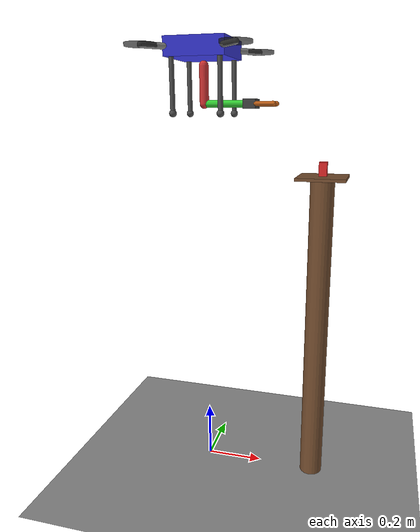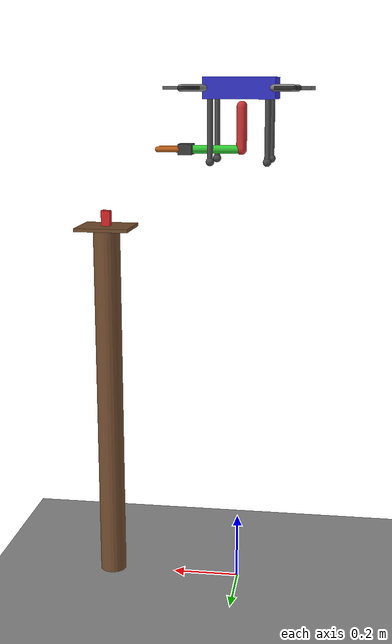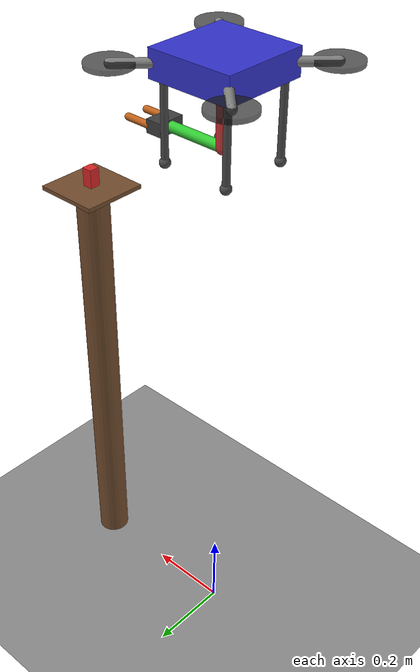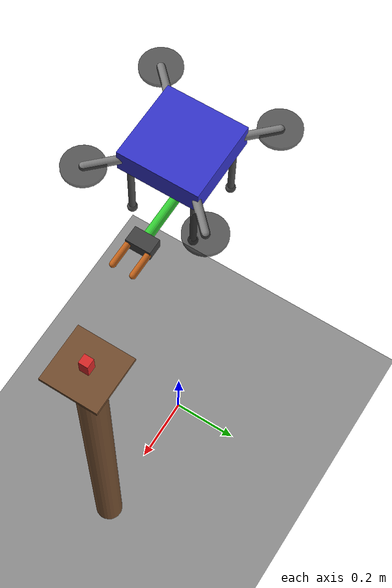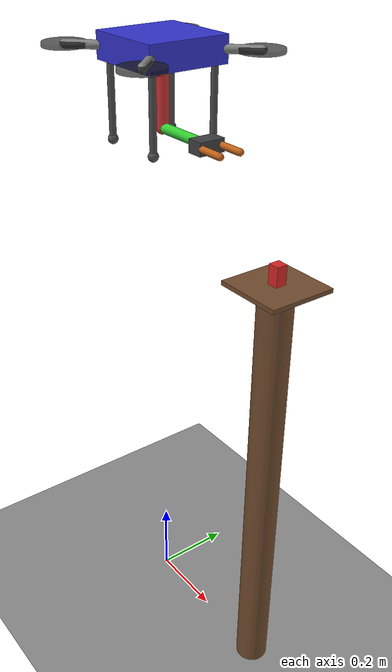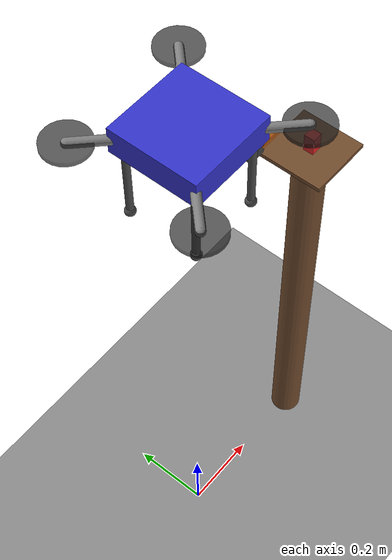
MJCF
<mujoco model="grasp_scene">

    <compiler angle="radian" coordinate="local"/>
    <option gravity="0 0 -9.81" timestep="0.002"/>

    <visual>
        <headlight ambient="0.2 0.2 0.2" diffuse="0.4 0.4 0.4" specular="0.0 0.0 0.0"/>
        <quality shadowsize="8192"/>
        <map znear="0.005" zfar="100"/>
        <rgba haze="0.15 0.25 0.35 1"/>
    </visual>

    <asset>
        <texture name="grid" type="2d" builtin="checker" width="1024" height="1024"
                 rgb1="0.45 0.45 0.45" rgb2="0.65 0.65 0.65"/>
        <material name="grid_mat" texture="grid" texrepeat="5 5" texuniform="true"
                  reflectance="0.05"/>
        <texture name="sky" type="skybox" builtin="gradient"
                 rgb1="0.75 0.88 1.0" rgb2="0.08 0.18 0.45" width="512" height="512"/>

        <!-- Box material: bright red so it is easy to spot -->
        <material name="box_mat" rgba="0.85 0.15 0.15 1" reflectance="0.1"/>
        <!-- Pedestal material: dark wood-ish -->
        <material name="pedestal_mat" rgba="0.45 0.30 0.18 1" reflectance="0.05"/>
    </asset>

    <default>
        <joint damping="0.02"/>
        <geom contype="1" conaffinity="1"/>
        <default class="visual">
            <geom contype="0" conaffinity="0" mass="0"/>
        </default>
    </default>

    <worldbody>

        <!-- Ground -->
        <geom name="ground" type="plane" size="30 30 0.1" material="grid_mat"/>

        <!-- Cameras -->
        <camera name="track"  mode="trackcom" pos="3 -3 2"   xyaxes="1 1 0 -0.4 0.4 1"/>
        <camera name="side"   mode="trackcom" pos="0 -2 1.5" xyaxes="1 0 0 0 0.3 1"/>
        <camera name="fixed"  pos="4 4 3"                    xyaxes="-1 1 0 -0.5 -0.5 1"/>
        <!-- Close-up on the pedestal / box area -->
        <camera name="grasp_cam" pos="0.4 -0.6 1.3" xyaxes="1 0 0 0 0.6 1"/>

        <light name="main_light" pos="0 0 5" dir="0 0 -1"
               diffuse="0.8 0.8 0.8" specular="0.5 0.5 0.5" ambient="0.2 0.2 0.2"
               directional="true" castshadow="true"/>

        <!-- ===== Pedestal (fixed, no joint) ===== -->
        <!--   Cylinder column: radius 0.04 m, half-height 0.55 m → top at z = 1.10 m -->
        <body name="pedestal" pos="0.40 0 0">
            <geom name="pedestal_col"  type="cylinder" pos="0 0 0.55"
                  size="0.04 0.55"  material="pedestal_mat"/>
            <!-- Flat top plate -->
            <geom name="pedestal_top"  type="box"      pos="0 0 1.10"
                  size="0.08 0.08 0.005" material="pedestal_mat"/>
        </body>

        <!-- ===== Graspable box (free body) ===== -->
        <body name="box" pos="0.40 0 1.125">
            <joint name="box_free" type="free"/>
            <inertial pos="0 0 0" mass="0.01"
                      diaginertia="0.000014 0.000014 0.000014"/>
            <geom name="box_geom" type="box" size="0.013 0.013 0.025"
                  material="box_mat"
                  friction="2.0 0.2 0.01"
                  condim="4" solimp="0.99 0.999 0.0005" solref="0.01 1"/>
        </body>

        <!-- ===== Quadrotor + Arm (from am_robot.xml, embedded) ===== -->
        <body name="base" pos="0 0 1.5">
            <joint name="free_joint" type="free"/>
            <inertial pos="0 0 0" mass="1.5" diaginertia="0.008 0.008 0.015"/>

            <!-- Main body -->
            <geom name="base_body" type="box" size="0.1 0.1 0.03" rgba="0.2 0.2 0.8 1"
                  contype="1" conaffinity="1" mass="0"/>

            <!-- X arms (visual) -->
            <geom type="capsule" fromto="0 0 0  0.15  0.15 0" size="0.01" class="visual"/>
            <geom type="capsule" fromto="0 0 0 -0.15  0.15 0" size="0.01" class="visual"/>
            <geom type="capsule" fromto="0 0 0 -0.15 -0.15 0" size="0.01" class="visual"/>
            <geom type="capsule" fromto="0 0 0  0.15 -0.15 0" size="0.01" class="visual"/>

            <!-- Propellers (visual) -->
            <geom type="cylinder" pos=" 0.15  0.15 0" size="0.05 0.005" rgba="0.1 0.1 0.1 0.7" class="visual"/>
            <geom type="cylinder" pos="-0.15  0.15 0" size="0.05 0.005" rgba="0.1 0.1 0.1 0.7" class="visual"/>
            <geom type="cylinder" pos="-0.15 -0.15 0" size="0.05 0.005" rgba="0.1 0.1 0.1 0.7" class="visual"/>
            <geom type="cylinder" pos=" 0.15 -0.15 0" size="0.05 0.005" rgba="0.1 0.1 0.1 0.7" class="visual"/>

            <!-- Landing legs (visual) -->
            <geom type="capsule" fromto=" 0.08  0.08 -0.03  0.08  0.08 -0.20" size="0.008" rgba="0.3 0.3 0.3 1" class="visual"/>
            <geom type="capsule" fromto="-0.08  0.08 -0.03 -0.08  0.08 -0.20" size="0.008" rgba="0.3 0.3 0.3 1" class="visual"/>
            <geom type="capsule" fromto="-0.08 -0.08 -0.03 -0.08 -0.08 -0.20" size="0.008" rgba="0.3 0.3 0.3 1" class="visual"/>
            <geom type="capsule" fromto=" 0.08 -0.08 -0.03  0.08 -0.08 -0.20" size="0.008" rgba="0.3 0.3 0.3 1" class="visual"/>
            <!-- Landing feet (contact) -->
            <geom type="sphere" pos=" 0.08  0.08 -0.20" size="0.012" rgba="0.3 0.3 0.3 1" mass="0"/>
            <geom type="sphere" pos="-0.08  0.08 -0.20" size="0.012" rgba="0.3 0.3 0.3 1" mass="0"/>
            <geom type="sphere" pos="-0.08 -0.08 -0.20" size="0.012" rgba="0.3 0.3 0.3 1" mass="0"/>
            <geom type="sphere" pos=" 0.08 -0.08 -0.20" size="0.012" rgba="0.3 0.3 0.3 1" mass="0"/>

            <site name="platform_site" pos="0 0 0" size="0.01"/>

            <!-- ===== Robot Arm ===== -->
            <body name="link1" pos="0 0 -0.05">
                <joint name="joint1" type="hinge" axis="0 1 0" damping="0.02"/>
                <inertial pos="0 0 -0.06" mass="0.15" diaginertia="0.0002 0.0002 0.00005"/>
                <geom name="link1_geom" type="capsule" fromto="0 0 0 0 0 -0.12"
                      size="0.015" rgba="0.8 0.2 0.2 1" mass="0"/>

                <body name="link2" pos="0 0 -0.12">
                    <joint name="joint2" type="hinge" axis="0 1 0" damping="0.02"/>
                    <inertial pos="0.08 0 0" mass="0.12" diaginertia="0.00015 0.00015 0.00003"/>
                    <geom name="link2_geom" type="capsule" fromto="0 0 0 0.16 0 0"
                          size="0.012" rgba="0.2 0.8 0.2 1" mass="0"/>

                    <!-- ===== Gripper ===== -->
                    <body name="ee" pos="0.16 0 0">
                        <inertial pos="0 0 0" mass="0.05"
                                  diaginertia="0.00005 0.00008 0.00008"/>
                        <geom name="palm_geom" type="box" size="0.02 0.032 0.015"
                              rgba="0.25 0.25 0.25 1" friction="2.0 0.2 0.01"
                              condim="4" solimp="0.99 0.999 0.0005" solref="0.01 1"/>

                        <body name="finger_left" pos="0.02 0.026 0">
                            <joint name="gripper_left_joint" type="slide" axis="0 1 0"
                                   range="-0.024 0" damping="2.0"/>
                            <inertial pos="0.028 0 0" mass="0.025"
                                      diaginertia="0.000010 0.000015 0.000015"/>
                            <geom name="finger_left_geom" type="capsule"
                                  fromto="0 0 0 0.058 0 0" size="0.008"
                                  rgba="0.75 0.38 0.1 1" friction="2.0 0.2 0.01"
                                  condim="4" solimp="0.99 0.999 0.0005" solref="0.01 1"/>
                        </body>

                        <body name="finger_right" pos="0.02 -0.026 0">
                            <joint name="gripper_right_joint" type="slide" axis="0 1 0"
                                   range="0 0.024" damping="2.0"/>
                            <inertial pos="0.028 0 0" mass="0.025"
                                      diaginertia="0.000010 0.000015 0.000015"/>
                            <geom name="finger_right_geom" type="capsule"
                                  fromto="0 0 0 0.058 0 0" size="0.008"
                                  rgba="0.75 0.38 0.1 1" friction="2.0 0.2 0.01"
                                  condim="4" solimp="0.99 0.999 0.0005" solref="0.01 1"/>
                        </body>

                        <site name="end_effector" pos="0.078 0 0" size="0.008"
                              rgba="0 0 0 0." type="sphere"/>
                    </body>
                </body>
            </body>

        </body>

    </worldbody>

    <actuator>
        <motor name="joint1_torque"  joint="joint1"              gear="1" ctrllimited="true" ctrlrange="-5 5"/>
        <motor name="joint2_torque"  joint="joint2"              gear="1" ctrllimited="true" ctrlrange="-5 5"/>
        <motor name="gripper_left"   joint="gripper_left_joint"  gear="1" ctrllimited="true" ctrlrange="-50 0"/>
        <motor name="gripper_right"  joint="gripper_right_joint" gear="1" ctrllimited="true" ctrlrange="0 50"/>
    </actuator>

    <sensor>
        <!-- Joint position sensors -->
        <jointpos name="joint1_pos"        joint="joint1"/>
        <jointpos name="joint2_pos"        joint="joint2"/>
        <!-- Joint velocity sensors -->
        <!-- Platform (base) position via site -->
    </sensor>

</mujoco>
